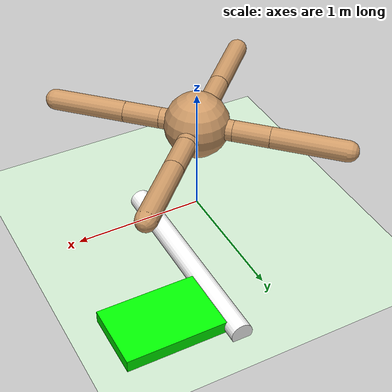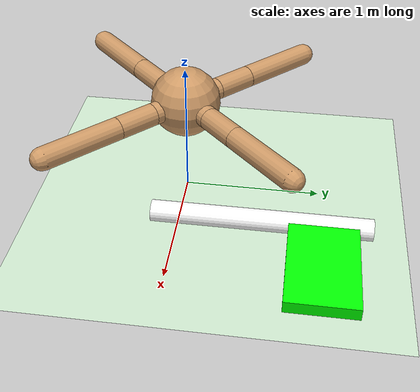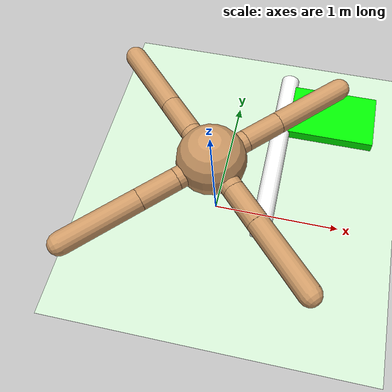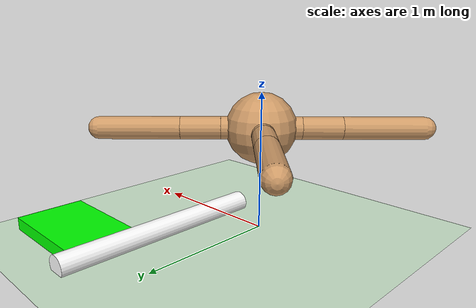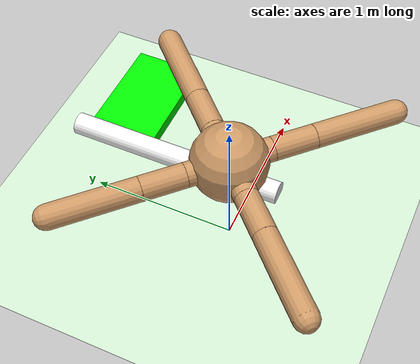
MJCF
<mujoco model="ant">
  <compiler inertiafromgeom="true" angle="degree" coordinate="local" />
  <option timestep="0.02" integrator="RK4" />
  <custom>
    <numeric name="init_qpos" data="0.0 0.0 0.55 1.0 0.0 0.0 0.0 0.0 1.0 0.0 -1.0 0.0 -1.0 0.0 1.0 .15 .15 .15 1 1 0 0" />
  </custom>
  <default>
    <joint limited="true" armature="1" damping="1" />
    <geom condim="3" conaffinity="0" margin="0.01" friction="1 0.5 0.5" solref=".02 1" solimp=".8 .8 .01" rgba="0.8 0.6 0.4 1" density="5.0" />
  </default>
  <asset>
      <texture type="skybox" builtin="gradient" rgb1="0.44 0.85 0.56" rgb2="0.46 0.87 0.58" width="32" height="32"></texture>
    <texture name="texgeom" type="cube" builtin="flat" mark="cross" width="127" height="1278" rgb1="0.8 0.6 0.4" rgb2="0.8 0.6 0.4" markrgb="1 1 1" random="0.01" />
        <texture name="texplane" type="2d" builtin="checker" rgb1=".5 .5 .5" rgb2=".5 .5 .5" width="100" height="100" />
    <texture name="texplane_show" type="2d" builtin="checker" rgb1="0 0 0" rgb2="0.9 0.9 0.9" width="100" height="100" />
    <material name='MatPlane' texture="texplane" shininess="1" texrepeat="30 30" specular="1"  reflectance="0.5" />
    <material name='geom' texture="texgeom" texuniform="true" />
  </asset>
  <worldbody>
    <light directional="true" cutoff="100" exponent="1" diffuse="1 1 1" specular=".1 .1 .1" pos="0 0 1.3" dir="-0 0 -1.3" />
    <geom name='floor' material="MatPlane" pos='0 0 0' size='40 40 40' type='plane' conaffinity='1' rgba='0.8 0.9 0.8 1' condim='3' />
    <body name="torso" pos="0 0 0.75">
      <geom name="torso_geom" type="sphere" size="0.25" pos="0 0 0" />
      <joint name="root" type="free" limited="false" pos="0 0 0" axis="0 0 1" margin="0.01" armature="0" damping="0" />
      <body name="front_left_leg" pos="0 0 0">
        <geom name="aux_1_geom" type="capsule" size="0.08" fromto="0.0 0.0 0.0 0.2 0.2 0.0" />
        <body name="aux_1" pos="0.2 0.2 0">
          <joint name="hip_1" type="hinge" pos="0.0 0.0 0.0" axis="0 0 1" range="-30 30" />
          <geom name="left_leg_geom" type="capsule" size="0.08" fromto="0.0 0.0 0.0 0.2 0.2 0.0" />
          <body pos="0.2 0.2 0">
            <joint name="ankle_1" type="hinge" pos="0.0 0.0 0.0" axis="-1 1 0" range="30 70" />
            <geom name="left_ankle_geom" type="capsule" size="0.08" fromto="0.0 0.0 0.0 0.4 0.4 0.0" />
          </body>
        </body>
      </body>
      <body name="front_right_leg" pos="0 0 0">
        <geom name="aux_2_geom" type="capsule" size="0.08" fromto="0.0 0.0 0.0 -0.2 0.2 0.0" />
        <body name="aux_2" pos="-0.2 0.2 0">
          <joint name="hip_2" type="hinge" pos="0.0 0.0 0.0" axis="0 0 1" range="-30 30" />
          <geom name="right_leg_geom" type="capsule" size="0.08" fromto="0.0 0.0 0.0 -0.2 0.2 0.0" />
          <body pos="-0.2 0.2 0">
            <joint name="ankle_2" type="hinge" pos="0.0 0.0 0.0" axis="1 1 0" range="-70 -30" />
            <geom name="right_ankle_geom" type="capsule" size="0.08" fromto="0.0 0.0 0.0 -0.4 0.4 0.0" />
          </body>
        </body>
      </body>
      <body name="back_leg" pos="0 0 0">
        <geom name="aux_3_geom" type="capsule" size="0.08" fromto="0.0 0.0 0.0 -0.2 -0.2 0.0" />
        <body name="aux_3" pos="-0.2 -0.2 0">
          <joint name="hip_3" type="hinge" pos="0.0 0.0 0.0" axis="0 0 1" range="-30 30" />
          <geom name="back_leg_geom" type="capsule" size="0.08" fromto="0.0 0.0 0.0 -0.2 -0.2 0.0" />
          <body pos="-0.2 -0.2 0">
            <joint name="ankle_3" type="hinge" pos="0.0 0.0 0.0" axis="-1 1 0" range="-70 -30" />
            <geom name="third_ankle_geom" type="capsule" size="0.08" fromto="0.0 0.0 0.0 -0.4 -0.4 0.0" />
          </body>
        </body>
      </body>
      <body name="right_back_leg" pos="0 0 0">
        <geom name="aux_4_geom" type="capsule" size="0.08" fromto="0.0 0.0 0.0 0.2 -0.2 0.0" />
        <body name="aux_4" pos="0.2 -0.2 0">
          <joint name="hip_4" type="hinge" pos="0.0 0.0 0.0" axis="0 0 1" range="-30 30" />
          <geom name="rightback_leg_geom" type="capsule" size="0.08" fromto="0.0 0.0 0.0 0.2 -0.2 0.0" />
          <body pos="0.2 -0.2 0">
            <joint name="ankle_4" type="hinge" pos="0.0 0.0 0.0" axis="1 1 0" range="30 70" />
            <geom name="fourth_ankle_geom" type="capsule" size="0.08" fromto="0.0 0.0 0.0 0.4 -0.4 0.0" />
          </body>
        </body>
      </body>
    </body>

    <body name="goal" pos="0.4 0.1 .04">
      <geom type="box" mass=".20" name="geom_object" size="0.5 0.5 0.5" rgba="0.5 0.6 0.8 0.0" user="1" contype="1" conaffinity="2"/>
      <joint name="fr" type="free" limited="false" damping="0" armature="0" user="010"/>
      <geom type="cylinder" mass="0.20" name="pole" size="0.08" rgba="1 1 1 1" fromto="0 -0.3 0 0 1.3 0" user="1" contype="1" conaffinity="2"/>
      <geom type="box" mass="0.20" name="flag" pos="0.4 0.95 0" size="0.4 0.25 0.05" rgba="0 1 0 1" user="1" contype="1" conaffinity="2" />
    </body>
    <camera mode="fixed" name="frontview" pos="0 -10 5" quat="0.86 0.51 0. 0." fovy="60"/>
  </worldbody>
  <actuator>
    <motor joint="hip_4" ctrlrange="-1.0 1.0" gear="150" ctrllimited="true" />
    <motor joint="ankle_4" ctrlrange="-1.0 1.0" gear="150" ctrllimited="true" />
    <motor joint="hip_1" ctrlrange="-1.0 1.0" gear="150" ctrllimited="true" />
    <motor joint="ankle_1" ctrlrange="-1.0 1.0" gear="150" ctrllimited="true" />
    <motor joint="hip_2" ctrlrange="-1.0 1.0" gear="150" ctrllimited="true" />
    <motor joint="ankle_2" ctrlrange="-1.0 1.0" gear="150" ctrllimited="true" />
    <motor joint="hip_3" ctrlrange="-1.0 1.0" gear="150" ctrllimited="true" />
    <motor joint="ankle_3" ctrlrange="-1.0 1.0" gear="150" ctrllimited="true" />
  </actuator>
</mujoco>
